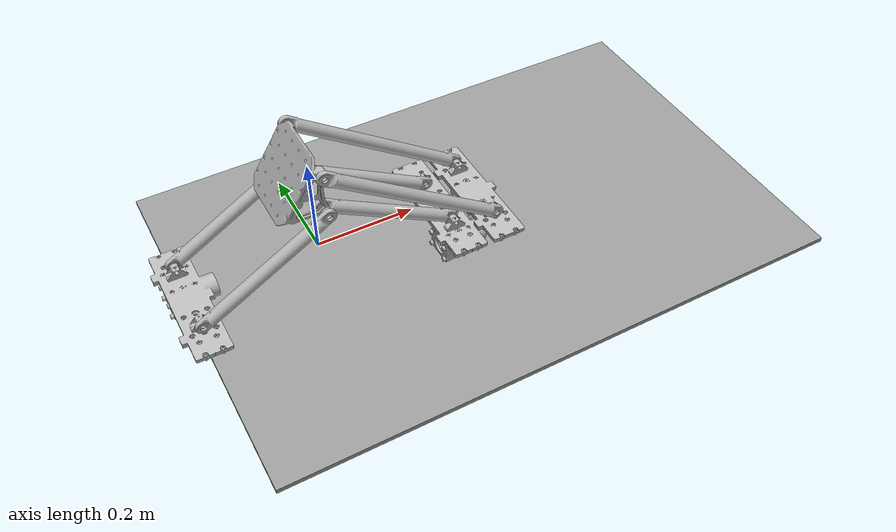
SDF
<?xml version='1.0'?>
<sdf version='1.6'>
  <model name="TSP">
  <static> false </static>

<link name="bed">
  <pose>0.340192378865 0 -0.1 0 0 0</pose>
 <collision name="collision">
  <geometry>
  <box>
  <size>1.2 0.8 0.01</size>
  </box>
  </geometry>
  </collision>
   <visual name="visual">
   <material>
       <script>
         <uri>file://media/materials/scripts/gazebo.material</uri>
         <name>Gazebo/Grey</name>
       </script>
     </material>
      <geometry>
      <box>
      <size>1.2 0.8 0.01</size>
      </box>
      </geometry>
    </visual>
   </link>

<joint type="fixed" name="base">
<pose>0 0 0 0 0 0</pose>
<parent>world</parent>
<child>bed</child>
</joint>

<link name="slider1">

    <pose>-0.259807621135 0 0  1.5708 0 0</pose>
    <self_collide>1</self_collide>

     <visual name="visual">
     <geometry>
       <mesh>
         <scale>0.001 0.001 0.001</scale>
         <uri>model://TSP/meshes/asm_slider_a.stl</uri>
       </mesh>
     </geometry>
      </visual>

     <collision name="collision">
     <geometry>
       <mesh>
         <scale>0.001 0.001 0.001</scale>
         <uri>model://TSP/meshes/asm_slider_a.stl</uri>
       </mesh>
     </geometry>
      </collision>

    <inertial>
    <mass>2.6</mass>
    </inertial>
     </link>

<joint type="prismatic" name="base_slider1">
        <pose>0 0 0 0 0 0</pose>
        <parent>world</parent>
        <child>slider1</child>

       <axis>
         <xyz>1 0 0</xyz>
         <limit>
         <lower>0</lower>
         <upper>1.2</upper>
       </limit>

        </axis>
    </joint>

<link name='slider1_support_left'>
  <pose>-0.259807621135 0.086 0 1.5708 -0.523599 0 </pose>
  <self_collide>1</self_collide>

<inertial>
<mass>0.294</mass>
<pose>0.15 0 0 0 0 0</pose>
<inertia>
<ixx>0.004</ixx>
<ixy>0</ixy>
<ixz>0</ixz>
<iyy>0.004</iyy>
<iyz>0</iyz>
<izz>0.009</izz>
</inertia>
</inertial>

  <collision name='collision'>
    <pose>0 0 0 0 0 0</pose>
    <geometry>
      <mesh>
        <scale>0.001 0.001 0.001</scale>
        <uri>model://TSP/meshes/asm_linkage_300.stl</uri>
      </mesh>
    </geometry>
  </collision>

  <visual name='visual'>
    <pose>0 0 0 0 0 0</pose>
    <geometry>
      <mesh>
        <scale>0.001 0.001 0.001</scale>
         <uri>model://TSP/meshes/asm_linkage_300.stl</uri>
      </mesh>
    </geometry>
  </visual>

</link>

<joint type="revolute" name="slider1_support_left_joint">
  <pose>0 0 0 0 0 0</pose>
  <parent>slider1</parent>
  <child>slider1_support_left</child>
  <axis>
    <xyz>0 0 1</xyz>
    <limit>

  </limit>

  </axis>
</joint>

<link name='slider1_support_right'>
  <pose>-0.259807621135 -0.086 0 1.5708 -0.523599 0 </pose>
  <self_collide>1</self_collide>

<inertial>
<mass>0.294</mass>
<pose>0.15 0 0 0 0 0</pose>
<inertia>
<ixx>0.004</ixx>
<ixy>0</ixy>
<ixz>0</ixz>
<iyy>0.004</iyy>
<iyz>0</iyz>
<izz>0.009</izz>
</inertia>
</inertial>

  <collision name='collision'>
    <pose>0 0 0 0 0 0</pose>
    <geometry>
      <mesh>
        <scale>0.001 0.001 0.001</scale>
        <uri>model://TSP/meshes/asm_linkage_300.stl</uri>
      </mesh>
    </geometry>
  </collision>

  <visual name='visual'>
    <pose>0 0 0 0 0 0</pose>

    <geometry>
      <mesh>
        <scale>0.001 0.001 0.001</scale>
         <uri>model://TSP/meshes/asm_linkage_300.stl</uri>
      </mesh>
    </geometry>
  </visual>

</link>

<joint type="revolute" name="slider1_support_right_joint">
  <pose>0 0 0 0 0 0</pose>
  <parent>slider1</parent>
  <child>slider1_support_right</child>
  <axis>
    <xyz>0 0 1</xyz>
    <limit>
    <lower>-0.523599</lower>
    <upper>1.047201</upper>

  </limit>

  </axis>
</joint>

<link name="slider2">
  <pose>0.259807621135 0 0 1.5708 0 0</pose>

      <self_collide>1</self_collide>

<inertial>
<mass>2.6</mass>
</inertial>

<collision name="collision">
<geometry>
  <mesh>
    <scale>0.001 0.001 0.001</scale>
    <uri>model://TSP/meshes/asm_slider_b.stl</uri>
  </mesh>
</geometry>
 </collision>

  <visual name="visual">
  <geometry>
    <mesh>
      <scale>0.001 0.001 0.001</scale>
      <uri>model://TSP/meshes/asm_slider_b.stl</uri>
    </mesh>
  </geometry>
  </visual>

</link>

<joint type="prismatic" name="base_slider2">
<pose>0 0 0 0 0 0</pose>
<parent>world</parent>
<child>slider2</child>
<axis>
<xyz>1 0 0</xyz>
<limit>
<lower>-0.519615242271</lower>
<upper>0.680384757729</upper>
</limit>
</axis>
</joint>

<link name='slider2_support_left'>
  <pose>0.259807621135 0.054 0 1.5707 3.66519 0</pose>
  <self_collide>1</self_collide>

<inertial>
<mass>0.294</mass>
<pose>0.15 0 0 0 0 0</pose>
<inertia>
<ixx>0.004</ixx>
<ixy>0</ixy>
<ixz>0</ixz>
<iyy>0.004</iyy>
<iyz>0</iyz>
<izz>0.009</izz>
</inertia>
</inertial>

 <collision name='collision'>
    <pose>0 0 0 0 0 0</pose>
    <geometry>
      <mesh>
        <scale>0.001 0.001 0.001</scale>
        <uri>model://TSP/meshes/asm_linkage_300.stl</uri>
      </mesh>
    </geometry>
  </collision>

  <visual name='visual'>
    <pose>0 0 0 0 0 0</pose>
    <geometry>
      <mesh>
        <scale>0.001 0.001 0.001</scale>
         <uri>model://TSP/meshes/asm_linkage_300.stl</uri>
      </mesh>
    </geometry>
  </visual>

</link>

<joint type="revolute" name="slider2_support_left_joint">
  <pose>0 0 0 0 0 0</pose>
  <parent>slider2</parent>
  <child>slider2_support_left</child>
  <axis>
    <xyz>0 0 1</xyz>
    <limit>
    <lower>-1.047201</lower>
    <upper>0.523599</upper>

  </limit>

  </axis>
</joint>

<link name='slider2_support_right'>
  <pose>0.259807621135 -0.054 0 1.5707 3.66519 0</pose>
  <self_collide>1</self_collide>

<inertial>
<mass>0.294</mass>
<pose>0.15 0 0 0 0 0</pose>
<inertia>
<ixx>0.004</ixx>
<ixy>0</ixy>
<ixz>0</ixz>
<iyy>0.004</iyy>
<iyz>0</iyz>
<izz>0.009</izz>
</inertia>
</inertial>

 <collision name='collision'>
    <pose>0 0 0 0 0 0</pose>
    <geometry>
      <mesh>
        <scale>0.001 0.001 0.001</scale>
        <uri>model://TSP/meshes/asm_linkage_300.stl</uri>
      </mesh>
    </geometry>
  </collision>

  <visual name='visual'>
    <pose>0 0 0 0 0 0</pose>
    <geometry>
      <mesh>
        <scale>0.001 0.001 0.001</scale>
         <uri>model://TSP/meshes/asm_linkage_300.stl</uri>
      </mesh>
    </geometry>
  </visual>

</link>

<joint type="revolute" name="slider2_support_right_joint">
  <pose>0 0 0 0 0 0</pose>
  <parent>slider2</parent>
  <child>slider2_support_right</child>
  <axis>
    <xyz>0 0 1</xyz>
    <limit>
    <lower>-1.047201</lower>
    <upper>0.523599</upper>

  </limit>
  </axis>
</joint>

<link name="slider3">
  <pose>0.344673758792 0 0 1.5708 0 0</pose>

      <self_collide>1</self_collide>

<inertial>
<mass>3.3</mass>
</inertial>

<collision name="collision">
<geometry>
  <mesh>
    <scale>0.001 0.001 0.001</scale>
    <uri>model://TSP/meshes/asm_slider_c.stl</uri>
  </mesh>
</geometry>
 </collision>

  <visual name="visual">
  <geometry>
    <mesh>
      <scale>0.001 0.001 0.001</scale>
      <uri>model://TSP/meshes/asm_slider_c.stl</uri>
    </mesh>
  </geometry>
  </visual>

</link>

<joint type="prismatic" name="base_slider3">
<pose>0 0 0 0 0 0</pose>
<parent>world</parent>
<child>slider3</child>
<axis>
<xyz>1 0 0</xyz>
<limit>
<lower>-0.604481379927</lower>
<upper>0.595518620073</upper>
</limit>
</axis>
</joint>

<link name='slider3_support_left'>
  <pose>0.344673758792 0.086 0 1.5707 -2.53334707359 0</pose>
  <self_collide>1</self_collide>

<inertial>
<mass>0.348</mass>
<pose>0.21 0 0 0 0 0</pose>
<inertia>
<ixx>0.004</ixx>
<ixy>0</ixy>
<ixz>0</ixz>
<iyy>0.004</iyy>
<iyz>0</iyz>
<izz>0.009</izz>
</inertia>
</inertial>

 <collision name='collision'>
    <pose>0 0 0 0 0 0</pose>
    <geometry>
      <mesh>
        <scale>0.001 0.001 0.001</scale>
        <uri>model://TSP/meshes/asm_linkage_420.stl</uri>
      </mesh>
    </geometry>
  </collision>

  <visual name='visual'>
    <pose>0 0 0 0 0 0</pose>
    <geometry>
      <mesh>
        <scale>0.001 0.001 0.001</scale>
         <uri>model://TSP/meshes/asm_linkage_420.stl</uri>
      </mesh>
    </geometry>
  </visual>

</link>

<joint type="revolute" name="slider3_support_left_joint">
  <pose>0 0 0 0 0 0</pose>
  <parent>slider3</parent>
  <child>slider3_support_left</child>
  <axis>
    <xyz>0 0 1</xyz>
    <limit>
    <lower>-0.962550746801006</lower>
    <upper>0.60824557998</upper>
  </limit>
  </axis>
</joint>

<link name='slider3_support_right'>
  <pose>0.344673758792 -0.086 0  1.5707 -2.53334707359 0</pose>
  <self_collide>1</self_collide>

<inertial>
<mass>0.348</mass>
<pose>0.21 0 0 0 0 0</pose>
<inertia>
<ixx>0.004</ixx>
<ixy>0</ixy>
<ixz>0</ixz>
<iyy>0.004</iyy>
<iyz>0</iyz>
<izz>0.009</izz>
</inertia>
</inertial>

 <collision name='collision'>
    <pose>0 0 0 0 0 0</pose>
    <geometry>
      <mesh>
        <scale>0.001 0.001 0.001</scale>
        <uri>model://TSP/meshes/asm_linkage_420.stl</uri>
      </mesh>
    </geometry>
  </collision>

  <visual name='visual'>
    <pose>0 0 0 0 0 0</pose>
    <geometry>
      <mesh>
        <scale>0.001 0.001 0.001</scale>
         <uri>model://TSP/meshes/asm_linkage_420.stl</uri>
      </mesh>
    </geometry>
  </visual>

</link>

<joint type="revolute" name="slider3_support_right_joint">
  <pose>0 0 0 0 0 0</pose>
  <parent>slider3</parent>
  <child>slider3_support_right</child>

  <axis>
    <xyz>0 0 1</xyz>
    <limit>
    <lower>-0.962550746801006</lower>
    <upper>0.60824557998</upper>
  </limit>
  </axis>
  </joint>

<link name='base_TSP'>
  <pose>0 0 0.15 0 -1.57079632679 0 </pose>
  <self_collide>1</self_collide>

  <inertial>
    <pose>0.045 0.025 0 0 0 0</pose>
    <mass>0.5</mass>
    <inertia>
      <ixx>1.1E-03</ixx>
      <ixy>0</ixy>
      <ixz>0</ixz>
      <iyy>1.1E-03</iyy>
      <iyz>0</iyz>
      <izz>1.1E-03</izz>
    </inertia>
  </inertial>

  <collision name='collision'>
    <pose>0 0 0 0 0 0</pose>
    <geometry>
      <mesh>
        <scale>0.001 0.001 0.001</scale>
   <uri>model://TSP/meshes/asm_pedal_blockv2simplified.stl</uri>
      </mesh>
    </geometry>
  </collision>

  <visual name='visual'>
    <pose>0 0 0 0 0 0</pose>
    <geometry>
      <mesh>
        <scale>0.001 0.001 0.001</scale>
        <uri>model://TSP/meshes/asm_pedal_blockv2simplified.stl</uri>
      </mesh>
    </geometry>
  </visual>

</link>

<joint type="revolute" name="slider1_support_left_base_TSP">
  <pose>0 0.085 0 0 0 0</pose>
  <parent>slider1_support_left</parent>
  <child>base_TSP</child>
  <axis>
    <xyz>0 1 0</xyz>
  </axis>
</joint>

<joint type="revolute" name="slider1_support_right_base_TSP">
  <pose>0 -0.085 0 0 0 0</pose>
  <parent>slider1_support_right</parent>
  <child>base_TSP</child>
  <axis>
    <xyz>0 1 0</xyz>
  </axis>
</joint>

<joint type="revolute" name="base_TSP_slider2_support_left">
  <pose>0.3 0 0 0 0 0</pose>

  <child>slider2_support_left</child>
  <parent>base_TSP</parent>
  <axis>
    <xyz>0 0 1</xyz>

  </axis>
</joint>

<joint type="revolute" name="base_TSP_slider2_support_right">
  <pose>0.3 0 0 0 0 0</pose>
  <child>slider2_support_right</child>
  <parent>base_TSP</parent>
  <axis>
    <xyz>0 0 1</xyz>

  </axis>
</joint>

<joint type="revolute" name="slider3_support_left_base_TSP">
  <pose>0.42 0 0 0 0 0</pose>

  <child>slider3_support_left</child>
  <parent>base_TSP</parent>
  <axis>
    <xyz>0 0 1 </xyz>

  </axis>
</joint>

<joint type="revolute" name="slider3_support_right_base_TSP">
  <pose>0.42 0 0 0 0 0</pose>

  <child>slider3_support_right</child>
  <parent>base_TSP</parent>
  <axis>
    <xyz>0 0 1 </xyz>

  </axis>
</joint>

  </model>
</sdf>
